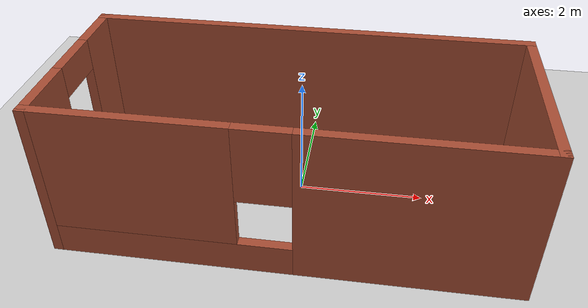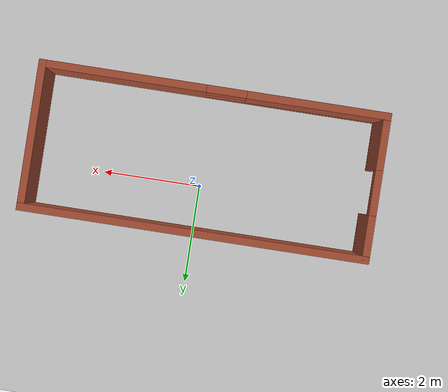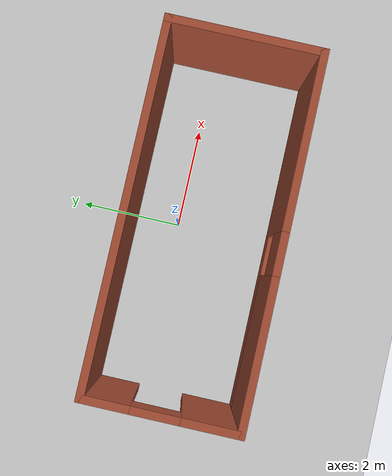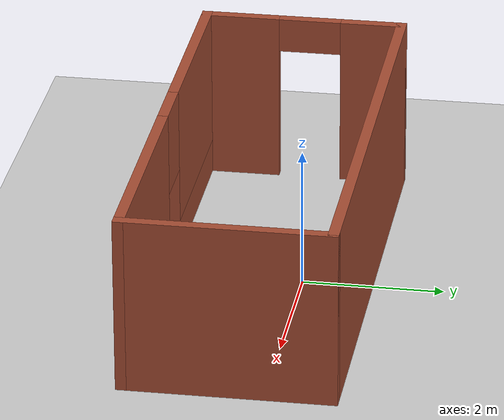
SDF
<sdf version="1.6">
 <world name="default">
  <plugin name="welcome_message" filename="libhello.so"/>
  <light name="sun" type="directional">
   <pose>0 0 10 0 -0 0</pose>
   <diffuse>0.8 0.8 0.8 1</diffuse>
   <specular>0.1 0.1 0.1 1</specular>
   <attenuation>
    <range>1000</range>
    <constant>0.9</constant>
    <linear>0.01</linear>
    <quadratic>0.001</quadratic>
   </attenuation>
   <direction>-0.5 0.5 -1</direction>
  </light>
  <model name="ground_plane">
   <static>1</static>
   <link name="link">
    <collision name="collision">
     <geometry><plane><normal>0 0 1</normal><size>100 100</size></plane></geometry>
     <surface><friction><ode><mu>100</mu><mu2>50</mu2></ode></friction></surface>
    </collision>
    <visual name="visual">
     <cast_shadows>0</cast_shadows>
     <geometry><plane><normal>0 0 1</normal><size>100 100</size></plane></geometry>
     <material>
      <script><uri>file://media/materials/scripts/gazebo.material</uri><name>Gazebo/Grey</name></script>
     </material>
    </visual>
   </link>
  </model>
  <gravity>0 0 -9.8</gravity>
  <magnetic_field>6e-06 2.3e-05 -4.2e-05</magnetic_field>
  <atmosphere type="adiabatic"/>
  <physics name="default_physics" default="0" type="ode">
   <max_step_size>0.001</max_step_size>
   <real_time_factor>1</real_time_factor>
   <real_time_update_rate>1000</real_time_update_rate>
  </physics>
  <scene><ambient>0.4 0.4 0.4 1</ambient><background>0.7 0.7 0.7 1</background><shadows>1</shadows></scene>
  <spherical_coordinates>
   <surface_model>EARTH_WGS84</surface_model>
   <latitude_deg>0</latitude_deg>
   <longitude_deg>0</longitude_deg>
   <elevation>0</elevation>
   <heading_deg>0</heading_deg>
  </spherical_coordinates>
  <model name="office_model">
   <pose>-0.017665 -0.496542 0 0 -0 0</pose>
   <link name="Wall_0">
    <collision name="Wall_0_Collision">
     <geometry><box><size>7 0.15 2.5</size></box></geometry>
     <pose>0 0 1.25 0 -0 0</pose>
    </collision>
    <visual name="Wall_0_Visual">
     <pose>0 0 1.25 0 -0 0</pose>
     <geometry><box><size>7 0.15 2.5</size></box></geometry>
     <material>
      <script><uri>file://media/materials/scripts/gazebo.material</uri><name>Gazebo/Bricks</name></script>
      <ambient>1 1 1 1</ambient>
     </material>
     <meta><layer>0</layer></meta>
    </visual>
    <pose>0 1.425 0 0 -0 0</pose>
   </link>
   <link name="Wall_1">
    <collision name="Wall_1_Collision">
     <geometry><box><size>3 0.15 2.5</size></box></geometry>
     <pose>0 0 1.25 0 -0 0</pose>
    </collision>
    <visual name="Wall_1_Visual">
     <pose>0 0 1.25 0 -0 0</pose>
     <geometry><box><size>3 0.15 2.5</size></box></geometry>
     <material>
      <script><uri>file://media/materials/scripts/gazebo.material</uri><name>Gazebo/Bricks</name></script>
      <ambient>1 1 1 1</ambient>
     </material>
     <meta><layer>0</layer></meta>
    </visual>
    <pose>3.425 0 0 0 0 -1.5708</pose>
   </link>
   <link name="Wall_2">
    <pose>0 -1.425 0 0 -0 3.14159</pose>
    <visual name="Wall_2_Visual_0">
     <pose>-1.8325 0 1.25 0 -0 0</pose>
     <geometry><box><size>3.335 0.15 2.5</size></box></geometry>
     <material>
      <script><uri>file://media/materials/scripts/gazebo.material</uri><name>Gazebo/Bricks</name></script>
      <ambient>1 1 1 1</ambient>
     </material>
     <meta><layer>0</layer></meta>
    </visual>
    <collision name="Wall_2_Collision_0">
     <geometry><box><size>3.335 0.15 2.5</size></box></geometry>
     <pose>-1.8325 0 1.25 0 -0 0</pose>
    </collision>
    <visual name="Wall_2_Visual_1">
     <pose>1.6675 0 0.25 0 -0 0</pose>
     <geometry><box><size>3.665 0.15 0.5</size></box></geometry>
     <material>
      <script><uri>file://media/materials/scripts/gazebo.material</uri><name>Gazebo/Bricks</name></script>
      <ambient>1 1 1 1</ambient>
     </material>
     <meta><layer>0</layer></meta>
    </visual>
    <collision name="Wall_2_Collision_1">
     <geometry><box><size>3.665 0.15 0.5</size></box></geometry>
     <pose>1.6675 0 0.25 0 -0 0</pose>
    </collision>
    <visual name="Wall_2_Visual_2">
     <pose>2.0675 0 1.5 0 -0 0</pose>
     <geometry><box><size>2.865 0.15 2</size></box></geometry>
     <material>
      <script><uri>file://media/materials/scripts/gazebo.material</uri><name>Gazebo/Bricks</name></script>
      <ambient>1 1 1 1</ambient>
     </material>
     <meta><layer>0</layer></meta>
    </visual>
    <collision name="Wall_2_Collision_2">
     <geometry><box><size>2.865 0.15 2</size></box></geometry>
     <pose>2.0675 0 1.5 0 -0 0</pose>
    </collision>
    <visual name="Wall_2_Visual_3">
     <pose>0.235 0 1.9 0 -0 0</pose>
     <geometry><box><size>0.8 0.15 1.2</size></box></geometry>
     <material>
      <script><uri>file://media/materials/scripts/gazebo.material</uri><name>Gazebo/Bricks</name></script>
      <ambient>1 1 1 1</ambient>
     </material>
     <meta><layer>0</layer></meta>
    </visual>
    <collision name="Wall_2_Collision_3">
     <geometry><box><size>0.8 0.15 1.2</size></box></geometry>
     <pose>0.235 0 1.9 0 -0 0</pose>
    </collision>
   </link>
   <link name="Wall_3">
    <pose>-3.425 0 0 0 -0 1.5708</pose>
    <visual name="Wall_3_Visual_0">
     <pose>-0.9275 0 1.25 0 -0 0</pose>
     <geometry><box><size>1.145 0.15 2.5</size></box></geometry>
     <material>
      <script><uri>file://media/materials/scripts/gazebo.material</uri><name>Gazebo/Bricks</name></script>
      <ambient>1 1 1 1</ambient>
     </material>
     <meta><layer>0</layer></meta>
    </visual>
    <collision name="Wall_3_Collision_0">
     <geometry><box><size>1.145 0.15 2.5</size></box></geometry>
     <pose>-0.9275 0 1.25 0 -0 0</pose>
    </collision>
    <visual name="Wall_3_Visual_1">
     <pose>1.0225 0 1.25 0 -0 0</pose>
     <geometry><box><size>0.955 0.15 2.5</size></box></geometry>
     <material>
      <script><uri>file://media/materials/scripts/gazebo.material</uri><name>Gazebo/Bricks</name></script>
      <ambient>1 1 1 1</ambient>
     </material>
     <meta><layer>0</layer></meta>
    </visual>
    <collision name="Wall_3_Collision_1">
     <geometry><box><size>0.955 0.15 2.5</size></box></geometry>
     <pose>1.0225 0 1.25 0 -0 0</pose>
    </collision>
    <visual name="Wall_3_Visual_2">
     <pose>0.095 0 2.25 0 -0 0</pose>
     <geometry><box><size>0.9 0.15 0.5</size></box></geometry>
     <material>
      <script><uri>file://media/materials/scripts/gazebo.material</uri><name>Gazebo/Bricks</name></script>
      <ambient>1 1 1 1</ambient>
     </material>
     <meta><layer>0</layer></meta>
    </visual>
    <collision name="Wall_3_Collision_2">
     <geometry><box><size>0.9 0.15 0.5</size></box></geometry>
     <pose>0.095 0 2.25 0 -0 0</pose>
    </collision>
   </link>
   <static>1</static>
  </model>
 </world>
</sdf>
